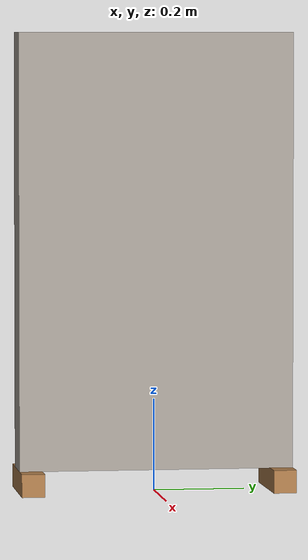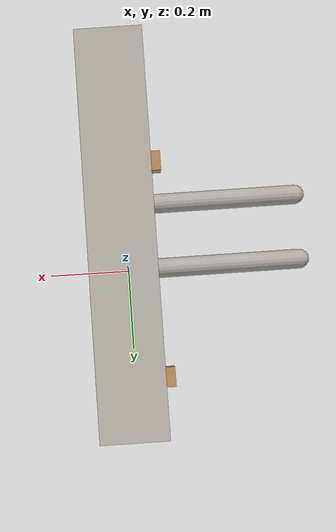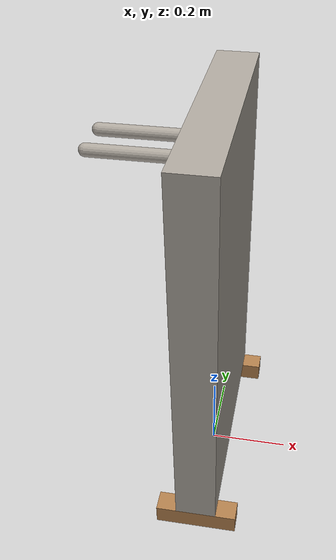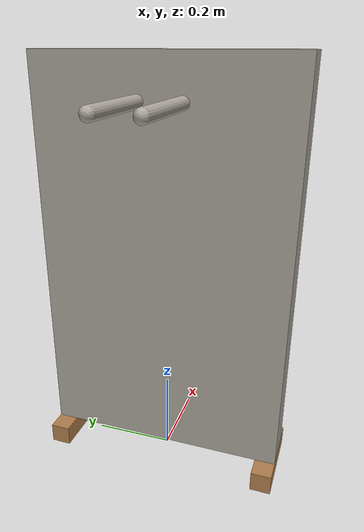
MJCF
<?xml version="1.0" encoding="utf-8"?>
<!-- from https://github.com/vikashplus/mj_envs/tree/master/mj_envs/hand_manipulation_suite/assets -->
<!-- Information about door can be found in this paper: https://arxiv.org/pdf/1709.10087.pdf -->

<mujoco model="pegboard">
  <asset>
    <texture file="../textures/light-wood.png" type="cube" name="light-wood" />
    <texture file="../textures/dark-wood.png" type="cube" name="dark-wood" />
    <texture file="../textures/brass-ambra.png" type="cube" name="metal" />
    <texture file="../textures/steel-brushed.png" type="cube" name="steel" />
    <material name="MatDarkWood" texture="dark-wood" texrepeat="3 3" specular="0.4" shininess="0.1" />
    <material name="MatLightWood" texture="light-wood" texrepeat="3 3" specular="0.4" shininess="0.1" />
    <material name="MatMetal" texture="metal" specular="1" shininess="0.3" rgba="0.9 0.9 0.9 1" />
    <material name="MatSteel" texture="steel" specular="1" shininess="0.3" rgba="0.9 0.9 0.9 1" />
    <material name="MatBlack" specular="0.2" shininess="0.3" rgba="0.1 0.1 0.1 1" />
  </asset>

  <worldbody>
    <body>
      <body name="object">
        <inertial pos="0 0 0" mass="5000" diaginertia="0.5 0.5 0.1"/>
        <site name="origin" pos="0 0 0" rgba="0 0 0 0" size="0.005"/>

        <geom
          pos="0 0.275 0.025" size="0.1 0.025 0.025" type="box"
          group="1" contype="0" conaffinity="0"
          material="MatDarkWood"
          />

        <geom
          pos="0 -0.275 0.025" size="0.1 0.025 0.025" type="box"
          group="1" contype="0" conaffinity="0"
          material="MatDarkWood"
          />

        <geom
          pos="0 0 0.525" size="0.05 0.3 0.475" type="box"
          group="1" contype="0" conaffinity="0"
          material="MatMetal"
          />

        <geom
          pos="0 0 0.525" size="0.05 0.3 0.475" type="box"
          group="0" friction='1 1 1'
          rgba="0 0 0 0"
          />

        <body name="hanger" pos="0 0 0.9">
          <geom
            fromto="-0.05 -0.05 0 -0.27 -0.05 0" size="0.015" type="capsule"
            group="1" contype="0" conaffinity="0"
            material="MatSteel"
            />

          <geom
            fromto="-0.05 0.05 0 -0.27 0.05 0" size="0.015" type="capsule"
            group="1" contype="0" conaffinity="0"
            material="MatSteel"
            />

          <geom
            fromto="-0.05 -0.05 0 -0.27 -0.05 0" size="0.015" type="capsule"
            group="0" friction='1 1 1'
            rgba="0 0 0 0"
            />

          <geom
            fromto="-0.05 0.05 0 -0.27 0.05 0" size="0.015" type="capsule"
            group="0" friction='1 1 1'
            rgba="0 0 0 0"
            />
        </body>

      </body>
      <site name="bottom_site" pos="0 0 -0.0207" rgba="0 0 0 0" size="0.005"/>
      <site name="top_site" pos="0 0 0.007" rgba="0 0 0 0" size="0.005"/>
      <site name="horizontal_radius_site" pos="0 0 0" rgba="0 0 0 0" size="0.003"/>
    </body>

  </worldbody>
</mujoco>
